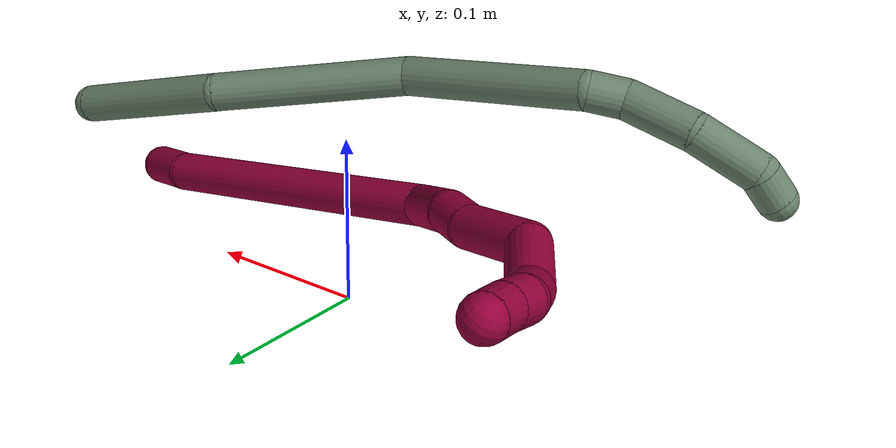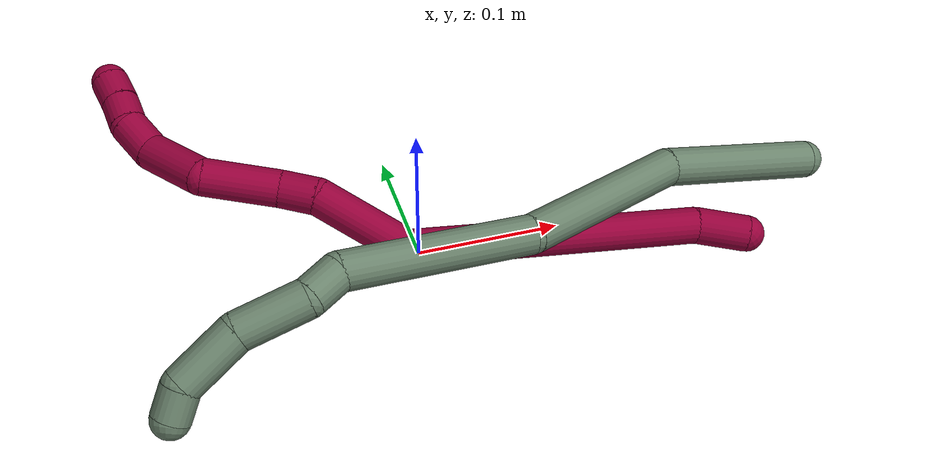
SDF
<sdf version="1.7">
 <world name="default">
  <model name="8">
   <static>0</static>
   <link name="8">
    <collision name="collision-cylinder-e_1_1_4">
     <pose>-0.015301 0.002661 0.009946 -0.261415 -0.978482 0.139751</pose>
     <geometry><cylinder><radius>0.0125</radius><length>0.036885</length></cylinder></geometry>
     <surface>
      <friction><ode><mu>1.16</mu><mu2>1.16</mu2><slip1>0</slip1><slip2>0</slip2></ode></friction>
      <contact><ode><kp>1e+06</kp><kd>1</kd><max_vel>0</max_vel><min_depth>0.001</min_depth></ode></contact>
     </surface>
    </collision>
    <visual name="visual-cylinder-e_1_1_4">
     <pose>-0.015301 0.002661 0.009946 -0.261415 -0.978482 0.139751</pose>
     <geometry><cylinder><radius>0.0125</radius><length>0.036885</length></cylinder></geometry>
     <material><ambient>0.584314 0 0.227451 1</ambient></material>
    </visual>
    <collision name="collision-cylinder-e_2_4_5">
     <pose>-0.114293 -0.010604 0.076923 0.272317 -0.955049 -0.141556</pose>
     <geometry><cylinder><radius>0.0125</radius><length>0.205041</length></cylinder></geometry>
     <surface>
      <friction><ode><mu>1.16</mu><mu2>1.16</mu2><slip1>0</slip1><slip2>0</slip2></ode></friction>
      <contact><ode><kp>1e+06</kp><kd>1</kd><max_vel>0</max_vel><min_depth>0.001</min_depth></ode></contact>
     </surface>
    </collision>
    <visual name="visual-cylinder-e_2_4_5">
     <pose>-0.114293 -0.010604 0.076923 0.272317 -0.955049 -0.141556</pose>
     <geometry><cylinder><radius>0.0125</radius><length>0.205041</length></cylinder></geometry>
     <material><ambient>0.584314 0 0.227451 1</ambient></material>
    </visual>
    <collision name="collision-cylinder-e_3_5_6">
     <pose>-0.220315 -0.009523 0.152517 -0.741655 -0.725569 0.293062</pose>
     <geometry><cylinder><radius>0.0125</radius><length>0.067305</length></cylinder></geometry>
     <surface>
      <friction><ode><mu>1.16</mu><mu2>1.16</mu2><slip1>0</slip1><slip2>0</slip2></ode></friction>
      <contact><ode><kp>1e+06</kp><kd>1</kd><max_vel>0</max_vel><min_depth>0.001</min_depth></ode></contact>
     </surface>
    </collision>
    <visual name="visual-cylinder-e_3_5_6">
     <pose>-0.220315 -0.009523 0.152517 -0.741655 -0.725569 0.293062</pose>
     <geometry><cylinder><radius>0.0125</radius><length>0.067305</length></cylinder></geometry>
     <material><ambient>0.584314 0 0.227451 1</ambient></material>
    </visual>
    <collision name="collision-cylinder-e_4_6_7">
     <pose>-0.25367 0.011562 0.175912 -0.701112 -1.05005 0.417448</pose>
     <geometry><cylinder><radius>0.0125</radius><length>0.025418</length></cylinder></geometry>
     <surface>
      <friction><ode><mu>1.16</mu><mu2>1.16</mu2><slip1>0</slip1><slip2>0</slip2></ode></friction>
      <contact><ode><kp>1e+06</kp><kd>1</kd><max_vel>0</max_vel><min_depth>0.001</min_depth></ode></contact>
     </surface>
    </collision>
    <visual name="visual-cylinder-e_4_6_7">
     <pose>-0.25367 0.011562 0.175912 -0.701112 -1.05005 0.417448</pose>
     <geometry><cylinder><radius>0.0125</radius><length>0.025418</length></cylinder></geometry>
     <material><ambient>0.584314 0 0.227451 1</ambient></material>
    </visual>
    <collision name="collision-cylinder-e_5_7_8">
     <pose>-0.286368 0.019423 0.194446 -0.269356 -0.990325 0.146088</pose>
     <geometry><cylinder><radius>0.0125</radius><length>0.051837</length></cylinder></geometry>
     <surface>
      <friction><ode><mu>1.16</mu><mu2>1.16</mu2><slip1>0</slip1><slip2>0</slip2></ode></friction>
      <contact><ode><kp>1e+06</kp><kd>1</kd><max_vel>0</max_vel><min_depth>0.001</min_depth></ode></contact>
     </surface>
    </collision>
    <visual name="visual-cylinder-e_5_7_8">
     <pose>-0.286368 0.019423 0.194446 -0.269356 -0.990325 0.146088</pose>
     <geometry><cylinder><radius>0.0125</radius><length>0.051837</length></cylinder></geometry>
     <material><ambient>0.584314 0 0.227451 1</ambient></material>
    </visual>
    <collision name="collision-cylinder-e_6_8_9">
     <pose>-0.325107 0.03856 0.210524 -1.41723 -0.832287 0.72421</pose>
     <geometry><cylinder><radius>0.0125</radius><length>0.046159</length></cylinder></geometry>
     <surface>
      <friction><ode><mu>1.16</mu><mu2>1.16</mu2><slip1>0</slip1><slip2>0</slip2></ode></friction>
      <contact><ode><kp>1e+06</kp><kd>1</kd><max_vel>0</max_vel><min_depth>0.001</min_depth></ode></contact>
     </surface>
    </collision>
    <visual name="visual-cylinder-e_6_8_9">
     <pose>-0.325107 0.03856 0.210524 -1.41723 -0.832287 0.72421</pose>
     <geometry><cylinder><radius>0.0125</radius><length>0.046159</length></cylinder></geometry>
     <material><ambient>0.584314 0 0.227451 1</ambient></material>
    </visual>
    <collision name="collision-cylinder-e_7_9_10">
     <pose>-0.348562 0.064407 0.217479 -1.15943 -0.508934 0.337377</pose>
     <geometry><cylinder><radius>0.0125</radius><length>0.02622</length></cylinder></geometry>
     <surface>
      <friction><ode><mu>1.16</mu><mu2>1.16</mu2><slip1>0</slip1><slip2>0</slip2></ode></friction>
      <contact><ode><kp>1e+06</kp><kd>1</kd><max_vel>0</max_vel><min_depth>0.001</min_depth></ode></contact>
     </surface>
    </collision>
    <visual name="visual-cylinder-e_7_9_10">
     <pose>-0.348562 0.064407 0.217479 -1.15943 -0.508934 0.337377</pose>
     <geometry><cylinder><radius>0.0125</radius><length>0.02622</length></cylinder></geometry>
     <material><ambient>0.584314 0 0.227451 1</ambient></material>
    </visual>
    <collision name="collision-cylinder-e_8_10_11">
     <pose>-0.357583 0.084589 0.223333 -1.43978 -0.263265 0.231159</pose>
     <geometry><cylinder><radius>0.0125</radius><length>0.020242</length></cylinder></geometry>
     <surface>
      <friction><ode><mu>1.16</mu><mu2>1.16</mu2><slip1>0</slip1><slip2>0</slip2></ode></friction>
      <contact><ode><kp>1e+06</kp><kd>1</kd><max_vel>0</max_vel><min_depth>0.001</min_depth></ode></contact>
     </surface>
    </collision>
    <visual name="visual-cylinder-e_8_10_11">
     <pose>-0.357583 0.084589 0.223333 -1.43978 -0.263265 0.231159</pose>
     <geometry><cylinder><radius>0.0125</radius><length>0.020242</length></cylinder></geometry>
     <material><ambient>0.584314 0 0.227451 1</ambient></material>
    </visual>
    <collision name="collision-cylinder-e_9_11_2">
     <pose>-0.363707 0.104016 0.226064 -1.42252 -0.340587 0.294221</pose>
     <geometry><cylinder><radius>0.0125</radius><length>0.020894</length></cylinder></geometry>
     <surface>
      <friction><ode><mu>1.16</mu><mu2>1.16</mu2><slip1>0</slip1><slip2>0</slip2></ode></friction>
      <contact><ode><kp>1e+06</kp><kd>1</kd><max_vel>0</max_vel><min_depth>0.001</min_depth></ode></contact>
     </surface>
    </collision>
    <visual name="visual-cylinder-e_9_11_2">
     <pose>-0.363707 0.104016 0.226064 -1.42252 -0.340587 0.294221</pose>
     <geometry><cylinder><radius>0.0125</radius><length>0.020894</length></cylinder></geometry>
     <material><ambient>0.584314 0 0.227451 1</ambient></material>
    </visual>
    <collision name="collision-sphere-2">
     <pose>-0.367197 0.113755 0.227519 0 -0 0</pose>
     <geometry><sphere><radius>0.0125</radius></sphere></geometry>
     <surface>
      <friction><ode><mu>1.16</mu><mu2>1.16</mu2><slip1>0</slip1><slip2>0</slip2></ode></friction>
      <contact><ode><kp>1e+06</kp><kd>1</kd><max_vel>0</max_vel><min_depth>0.001</min_depth></ode></contact>
     </surface>
    </collision>
    <visual name="visual-sphere-2">
     <pose>-0.367197 0.113755 0.227519 0 -0 0</pose>
     <geometry><sphere><radius>0.0125</radius></sphere></geometry>
     <material><ambient>0.584314 0 0.227451 1</ambient></material>
    </visual>
    <collision name="collision-sphere-11">
     <pose>-0.360217 0.094277 0.22461 0 -0 0</pose>
     <geometry><sphere><radius>0.0125</radius></sphere></geometry>
     <surface>
      <friction><ode><mu>1.16</mu><mu2>1.16</mu2><slip1>0</slip1><slip2>0</slip2></ode></friction>
      <contact><ode><kp>1e+06</kp><kd>1</kd><max_vel>0</max_vel><min_depth>0.001</min_depth></ode></contact>
     </surface>
    </collision>
    <visual name="visual-sphere-11">
     <pose>-0.360217 0.094277 0.22461 0 -0 0</pose>
     <geometry><sphere><radius>0.0125</radius></sphere></geometry>
     <material><ambient>0.584314 0 0.227451 1</ambient></material>
    </visual>
    <collision name="collision-sphere-10">
     <pose>-0.35495 0.074901 0.222056 0 -0 0</pose>
     <geometry><sphere><radius>0.0125</radius></sphere></geometry>
     <surface>
      <friction><ode><mu>1.16</mu><mu2>1.16</mu2><slip1>0</slip1><slip2>0</slip2></ode></friction>
      <contact><ode><kp>1e+06</kp><kd>1</kd><max_vel>0</max_vel><min_depth>0.001</min_depth></ode></contact>
     </surface>
    </collision>
    <visual name="visual-sphere-10">
     <pose>-0.35495 0.074901 0.222056 0 -0 0</pose>
     <geometry><sphere><radius>0.0125</radius></sphere></geometry>
     <material><ambient>0.584314 0 0.227451 1</ambient></material>
    </visual>
    <collision name="collision-sphere-9">
     <pose>-0.342174 0.053914 0.212901 0 -0 0</pose>
     <geometry><sphere><radius>0.0125</radius></sphere></geometry>
     <surface>
      <friction><ode><mu>1.16</mu><mu2>1.16</mu2><slip1>0</slip1><slip2>0</slip2></ode></friction>
      <contact><ode><kp>1e+06</kp><kd>1</kd><max_vel>0</max_vel><min_depth>0.001</min_depth></ode></contact>
     </surface>
    </collision>
    <visual name="visual-sphere-9">
     <pose>-0.342174 0.053914 0.212901 0 -0 0</pose>
     <geometry><sphere><radius>0.0125</radius></sphere></geometry>
     <material><ambient>0.584314 0 0.227451 1</ambient></material>
    </visual>
    <collision name="collision-sphere-4">
     <pose>-0.030601 0.005322 0.019892 0 -0 0</pose>
     <geometry><sphere><radius>0.0125</radius></sphere></geometry>
     <surface>
      <friction><ode><mu>1.16</mu><mu2>1.16</mu2><slip1>0</slip1><slip2>0</slip2></ode></friction>
      <contact><ode><kp>1e+06</kp><kd>1</kd><max_vel>0</max_vel><min_depth>0.001</min_depth></ode></contact>
     </surface>
    </collision>
    <visual name="visual-sphere-4">
     <pose>-0.030601 0.005322 0.019892 0 -0 0</pose>
     <geometry><sphere><radius>0.0125</radius></sphere></geometry>
     <material><ambient>0.584314 0 0.227451 1</ambient></material>
    </visual>
    <collision name="collision-sphere-1">
     <geometry><sphere><radius>0.0125</radius></sphere></geometry>
     <surface>
      <friction><ode><mu>1.16</mu><mu2>1.16</mu2><slip1>0</slip1><slip2>0</slip2></ode></friction>
      <contact><ode><kp>1e+06</kp><kd>1</kd><max_vel>0</max_vel><min_depth>0.001</min_depth></ode></contact>
     </surface>
    </collision>
    <visual name="visual-sphere-1">
     <geometry><sphere><radius>0.0125</radius></sphere></geometry>
     <material><ambient>0.584314 0 0.227451 1</ambient></material>
    </visual>
    <collision name="collision-sphere-8">
     <pose>-0.308041 0.023206 0.208147 0 -0 0</pose>
     <geometry><sphere><radius>0.0125</radius></sphere></geometry>
     <surface>
      <friction><ode><mu>1.16</mu><mu2>1.16</mu2><slip1>0</slip1><slip2>0</slip2></ode></friction>
      <contact><ode><kp>1e+06</kp><kd>1</kd><max_vel>0</max_vel><min_depth>0.001</min_depth></ode></contact>
     </surface>
    </collision>
    <visual name="visual-sphere-8">
     <pose>-0.308041 0.023206 0.208147 0 -0 0</pose>
     <geometry><sphere><radius>0.0125</radius></sphere></geometry>
     <material><ambient>0.584314 0 0.227451 1</ambient></material>
    </visual>
    <collision name="collision-sphere-5">
     <pose>-0.197985 -0.02653 0.133954 0 -0 0</pose>
     <geometry><sphere><radius>0.0125</radius></sphere></geometry>
     <surface>
      <friction><ode><mu>1.16</mu><mu2>1.16</mu2><slip1>0</slip1><slip2>0</slip2></ode></friction>
      <contact><ode><kp>1e+06</kp><kd>1</kd><max_vel>0</max_vel><min_depth>0.001</min_depth></ode></contact>
     </surface>
    </collision>
    <visual name="visual-sphere-5">
     <pose>-0.197985 -0.02653 0.133954 0 -0 0</pose>
     <geometry><sphere><radius>0.0125</radius></sphere></geometry>
     <material><ambient>0.584314 0 0.227451 1</ambient></material>
    </visual>
    <collision name="collision-sphere-6">
     <pose>-0.242646 0.007483 0.171081 0 -0 0</pose>
     <geometry><sphere><radius>0.0125</radius></sphere></geometry>
     <surface>
      <friction><ode><mu>1.16</mu><mu2>1.16</mu2><slip1>0</slip1><slip2>0</slip2></ode></friction>
      <contact><ode><kp>1e+06</kp><kd>1</kd><max_vel>0</max_vel><min_depth>0.001</min_depth></ode></contact>
     </surface>
    </collision>
    <visual name="visual-sphere-6">
     <pose>-0.242646 0.007483 0.171081 0 -0 0</pose>
     <geometry><sphere><radius>0.0125</radius></sphere></geometry>
     <material><ambient>0.584314 0 0.227451 1</ambient></material>
    </visual>
    <collision name="collision-sphere-7">
     <pose>-0.264694 0.015641 0.180744 0 -0 0</pose>
     <geometry><sphere><radius>0.0125</radius></sphere></geometry>
     <surface>
      <friction><ode><mu>1.16</mu><mu2>1.16</mu2><slip1>0</slip1><slip2>0</slip2></ode></friction>
      <contact><ode><kp>1e+06</kp><kd>1</kd><max_vel>0</max_vel><min_depth>0.001</min_depth></ode></contact>
     </surface>
    </collision>
    <visual name="visual-sphere-7">
     <pose>-0.264694 0.015641 0.180744 0 -0 0</pose>
     <geometry><sphere><radius>0.0125</radius></sphere></geometry>
     <material><ambient>0.584314 0 0.227451 1</ambient></material>
    </visual>
    <inertial>
     <pose>-0.198206 0.011876 0.131238 0 -0 0</pose>
     <mass>0.5</mass>
     <inertia>
      <ixx>0.000383</ixx>
      <ixy>0</ixy>
      <ixz>0</ixz>
      <iyy>0.000731</iyy>
      <iyz>0</iyz>
      <izz>0.000741</izz>
     </inertia>
    </inertial>
   </link>
   <pose>0.218099 -0.057074 0.011473 0.24016 -0.398568 -0.290121</pose>
  </model>
  <model name="17">
   <static>0</static>
   <link name="17">
    <collision name="collision-cylinder-e_1_1_4">
     <pose>-0.055205 -0.006924 0.010175 0.597539 -1.35144 -0.484093</pose>
     <geometry><cylinder><radius>0.0125</radius><length>0.113121</length></cylinder></geometry>
     <surface>
      <friction><ode><mu>1.16</mu><mu2>1.16</mu2><slip1>0</slip1><slip2>0</slip2></ode></friction>
      <contact><ode><kp>1e+06</kp><kd>1</kd><max_vel>0</max_vel><min_depth>0.001</min_depth></ode></contact>
     </surface>
    </collision>
    <visual name="visual-cylinder-e_1_1_4">
     <pose>-0.055205 -0.006924 0.010175 0.597539 -1.35144 -0.484093</pose>
     <geometry><cylinder><radius>0.0125</radius><length>0.113121</length></cylinder></geometry>
     <material><ambient>0.415686 0.509804 0.423529 1</ambient></material>
    </visual>
    <collision name="collision-cylinder-e_2_4_5">
     <pose>-0.168019 -0.00608 0.048367 -0.27049 -1.10341 0.167107</pose>
     <geometry><cylinder><radius>0.0125</radius><length>0.12906</length></cylinder></geometry>
     <surface>
      <friction><ode><mu>1.16</mu><mu2>1.16</mu2><slip1>0</slip1><slip2>0</slip2></ode></friction>
      <contact><ode><kp>1e+06</kp><kd>1</kd><max_vel>0</max_vel><min_depth>0.001</min_depth></ode></contact>
     </surface>
    </collision>
    <visual name="visual-cylinder-e_2_4_5">
     <pose>-0.168019 -0.00608 0.048367 -0.27049 -1.10341 0.167107</pose>
     <geometry><cylinder><radius>0.0125</radius><length>0.12906</length></cylinder></geometry>
     <material><ambient>0.415686 0.509804 0.423529 1</ambient></material>
    </visual>
    <collision name="collision-cylinder-e_3_5_6">
     <pose>-0.283693 -0.011562 0.09424 0.638418 -1.20507 -0.447094</pose>
     <geometry><cylinder><radius>0.0125</radius><length>0.124353</length></cylinder></geometry>
     <surface>
      <friction><ode><mu>1.16</mu><mu2>1.16</mu2><slip1>0</slip1><slip2>0</slip2></ode></friction>
      <contact><ode><kp>1e+06</kp><kd>1</kd><max_vel>0</max_vel><min_depth>0.001</min_depth></ode></contact>
     </surface>
    </collision>
    <visual name="visual-cylinder-e_3_5_6">
     <pose>-0.283693 -0.011562 0.09424 0.638418 -1.20507 -0.447094</pose>
     <geometry><cylinder><radius>0.0125</radius><length>0.124353</length></cylinder></geometry>
     <material><ambient>0.415686 0.509804 0.423529 1</ambient></material>
    </visual>
    <collision name="collision-cylinder-e_4_6_7">
     <pose>-0.350429 -0.024954 0.120373 0.01702 -0.808665 -0.007283</pose>
     <geometry><cylinder><radius>0.0125</radius><length>0.023977</length></cylinder></geometry>
     <surface>
      <friction><ode><mu>1.16</mu><mu2>1.16</mu2><slip1>0</slip1><slip2>0</slip2></ode></friction>
      <contact><ode><kp>1e+06</kp><kd>1</kd><max_vel>0</max_vel><min_depth>0.001</min_depth></ode></contact>
     </surface>
    </collision>
    <visual name="visual-cylinder-e_4_6_7">
     <pose>-0.350429 -0.024954 0.120373 0.01702 -0.808665 -0.007283</pose>
     <geometry><cylinder><radius>0.0125</radius><length>0.023977</length></cylinder></geometry>
     <material><ambient>0.415686 0.509804 0.423529 1</ambient></material>
    </visual>
    <collision name="collision-cylinder-e_5_7_8">
     <pose>-0.376082 -0.034255 0.140711 0.649543 -0.842471 -0.299456</pose>
     <geometry><cylinder><radius>0.0125</radius><length>0.045507</length></cylinder></geometry>
     <surface>
      <friction><ode><mu>1.16</mu><mu2>1.16</mu2><slip1>0</slip1><slip2>0</slip2></ode></friction>
      <contact><ode><kp>1e+06</kp><kd>1</kd><max_vel>0</max_vel><min_depth>0.001</min_depth></ode></contact>
     </surface>
    </collision>
    <visual name="visual-cylinder-e_5_7_8">
     <pose>-0.376082 -0.034255 0.140711 0.649543 -0.842471 -0.299456</pose>
     <geometry><cylinder><radius>0.0125</radius><length>0.045507</length></cylinder></geometry>
     <material><ambient>0.415686 0.509804 0.423529 1</ambient></material>
    </visual>
    <collision name="collision-cylinder-e_6_8_9">
     <pose>-0.404952 -0.050008 0.169606 0.373245 -0.58174 -0.11293</pose>
     <geometry><cylinder><radius>0.0125</radius><length>0.043276</length></cylinder></geometry>
     <surface>
      <friction><ode><mu>1.16</mu><mu2>1.16</mu2><slip1>0</slip1><slip2>0</slip2></ode></friction>
      <contact><ode><kp>1e+06</kp><kd>1</kd><max_vel>0</max_vel><min_depth>0.001</min_depth></ode></contact>
     </surface>
    </collision>
    <visual name="visual-cylinder-e_6_8_9">
     <pose>-0.404952 -0.050008 0.169606 0.373245 -0.58174 -0.11293</pose>
     <geometry><cylinder><radius>0.0125</radius><length>0.043276</length></cylinder></geometry>
     <material><ambient>0.415686 0.509804 0.423529 1</ambient></material>
    </visual>
    <collision name="collision-cylinder-e_7_9_2">
     <pose>-0.417416 -0.0596 0.196332 0.294493 -0.055487 -0.008232</pose>
     <geometry><cylinder><radius>0.0125</radius><length>0.020706</length></cylinder></geometry>
     <surface>
      <friction><ode><mu>1.16</mu><mu2>1.16</mu2><slip1>0</slip1><slip2>0</slip2></ode></friction>
      <contact><ode><kp>1e+06</kp><kd>1</kd><max_vel>0</max_vel><min_depth>0.001</min_depth></ode></contact>
     </surface>
    </collision>
    <visual name="visual-cylinder-e_7_9_2">
     <pose>-0.417416 -0.0596 0.196332 0.294493 -0.055487 -0.008232</pose>
     <geometry><cylinder><radius>0.0125</radius><length>0.020706</length></cylinder></geometry>
     <material><ambient>0.415686 0.509804 0.423529 1</ambient></material>
    </visual>
    <collision name="collision-sphere-2">
     <pose>-0.41799 -0.062601 0.206224 0 -0 0</pose>
     <geometry><sphere><radius>0.0125</radius></sphere></geometry>
     <surface>
      <friction><ode><mu>1.16</mu><mu2>1.16</mu2><slip1>0</slip1><slip2>0</slip2></ode></friction>
      <contact><ode><kp>1e+06</kp><kd>1</kd><max_vel>0</max_vel><min_depth>0.001</min_depth></ode></contact>
     </surface>
    </collision>
    <visual name="visual-sphere-2">
     <pose>-0.41799 -0.062601 0.206224 0 -0 0</pose>
     <geometry><sphere><radius>0.0125</radius></sphere></geometry>
     <material><ambient>0.415686 0.509804 0.423529 1</ambient></material>
    </visual>
    <collision name="collision-sphere-9">
     <pose>-0.416842 -0.0566 0.18644 0 -0 0</pose>
     <geometry><sphere><radius>0.0125</radius></sphere></geometry>
     <surface>
      <friction><ode><mu>1.16</mu><mu2>1.16</mu2><slip1>0</slip1><slip2>0</slip2></ode></friction>
      <contact><ode><kp>1e+06</kp><kd>1</kd><max_vel>0</max_vel><min_depth>0.001</min_depth></ode></contact>
     </surface>
    </collision>
    <visual name="visual-sphere-9">
     <pose>-0.416842 -0.0566 0.18644 0 -0 0</pose>
     <geometry><sphere><radius>0.0125</radius></sphere></geometry>
     <material><ambient>0.415686 0.509804 0.423529 1</ambient></material>
    </visual>
    <collision name="collision-sphere-4">
     <pose>-0.11041 -0.013848 0.02035 0 -0 0</pose>
     <geometry><sphere><radius>0.0125</radius></sphere></geometry>
     <surface>
      <friction><ode><mu>1.16</mu><mu2>1.16</mu2><slip1>0</slip1><slip2>0</slip2></ode></friction>
      <contact><ode><kp>1e+06</kp><kd>1</kd><max_vel>0</max_vel><min_depth>0.001</min_depth></ode></contact>
     </surface>
    </collision>
    <visual name="visual-sphere-4">
     <pose>-0.11041 -0.013848 0.02035 0 -0 0</pose>
     <geometry><sphere><radius>0.0125</radius></sphere></geometry>
     <material><ambient>0.415686 0.509804 0.423529 1</ambient></material>
    </visual>
    <collision name="collision-sphere-1">
     <geometry><sphere><radius>0.0125</radius></sphere></geometry>
     <surface>
      <friction><ode><mu>1.16</mu><mu2>1.16</mu2><slip1>0</slip1><slip2>0</slip2></ode></friction>
      <contact><ode><kp>1e+06</kp><kd>1</kd><max_vel>0</max_vel><min_depth>0.001</min_depth></ode></contact>
     </surface>
    </collision>
    <visual name="visual-sphere-1">
     <geometry><sphere><radius>0.0125</radius></sphere></geometry>
     <material><ambient>0.415686 0.509804 0.423529 1</ambient></material>
    </visual>
    <collision name="collision-sphere-8">
     <pose>-0.393063 -0.043415 0.152772 0 -0 0</pose>
     <geometry><sphere><radius>0.0125</radius></sphere></geometry>
     <surface>
      <friction><ode><mu>1.16</mu><mu2>1.16</mu2><slip1>0</slip1><slip2>0</slip2></ode></friction>
      <contact><ode><kp>1e+06</kp><kd>1</kd><max_vel>0</max_vel><min_depth>0.001</min_depth></ode></contact>
     </surface>
    </collision>
    <visual name="visual-sphere-8">
     <pose>-0.393063 -0.043415 0.152772 0 -0 0</pose>
     <geometry><sphere><radius>0.0125</radius></sphere></geometry>
     <material><ambient>0.415686 0.509804 0.423529 1</ambient></material>
    </visual>
    <collision name="collision-sphere-5">
     <pose>-0.225629 0.001689 0.076384 0 -0 0</pose>
     <geometry><sphere><radius>0.0125</radius></sphere></geometry>
     <surface>
      <friction><ode><mu>1.16</mu><mu2>1.16</mu2><slip1>0</slip1><slip2>0</slip2></ode></friction>
      <contact><ode><kp>1e+06</kp><kd>1</kd><max_vel>0</max_vel><min_depth>0.001</min_depth></ode></contact>
     </surface>
    </collision>
    <visual name="visual-sphere-5">
     <pose>-0.225629 0.001689 0.076384 0 -0 0</pose>
     <geometry><sphere><radius>0.0125</radius></sphere></geometry>
     <material><ambient>0.415686 0.509804 0.423529 1</ambient></material>
    </visual>
    <collision name="collision-sphere-6">
     <pose>-0.341757 -0.024813 0.112097 0 -0 0</pose>
     <geometry><sphere><radius>0.0125</radius></sphere></geometry>
     <surface>
      <friction><ode><mu>1.16</mu><mu2>1.16</mu2><slip1>0</slip1><slip2>0</slip2></ode></friction>
      <contact><ode><kp>1e+06</kp><kd>1</kd><max_vel>0</max_vel><min_depth>0.001</min_depth></ode></contact>
     </surface>
    </collision>
    <visual name="visual-sphere-6">
     <pose>-0.341757 -0.024813 0.112097 0 -0 0</pose>
     <geometry><sphere><radius>0.0125</radius></sphere></geometry>
     <material><ambient>0.415686 0.509804 0.423529 1</ambient></material>
    </visual>
    <collision name="collision-sphere-7">
     <pose>-0.359101 -0.025095 0.12865 0 -0 0</pose>
     <geometry><sphere><radius>0.0125</radius></sphere></geometry>
     <surface>
      <friction><ode><mu>1.16</mu><mu2>1.16</mu2><slip1>0</slip1><slip2>0</slip2></ode></friction>
      <contact><ode><kp>1e+06</kp><kd>1</kd><max_vel>0</max_vel><min_depth>0.001</min_depth></ode></contact>
     </surface>
    </collision>
    <visual name="visual-sphere-7">
     <pose>-0.359101 -0.025095 0.12865 0 -0 0</pose>
     <geometry><sphere><radius>0.0125</radius></sphere></geometry>
     <material><ambient>0.415686 0.509804 0.423529 1</ambient></material>
    </visual>
    <inertial>
     <pose>-0.229784 -0.017122 0.079614 0 -0 0</pose>
     <mass>0.5</mass>
     <inertia>
      <ixx>0.000116</ixx>
      <ixy>0</ixy>
      <ixz>0</ixz>
      <iyy>0.000453</iyy>
      <iyz>0</iyz>
      <izz>0.000505</izz>
     </inertia>
    </inertial>
   </link>
   <pose>0.263969 -0.037827 0.051678 2.53289 0.47302 0.121259</pose>
  </model>
 </world>
</sdf>
